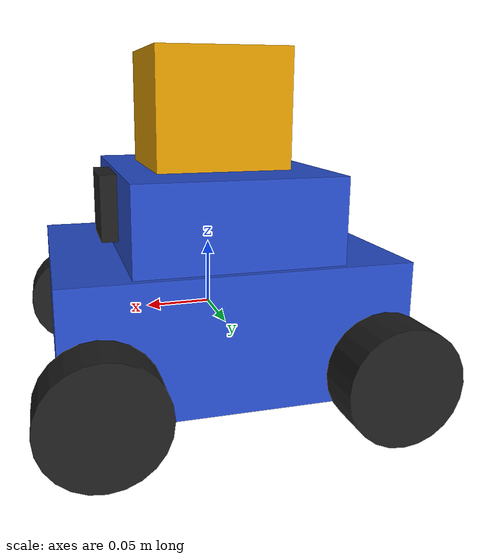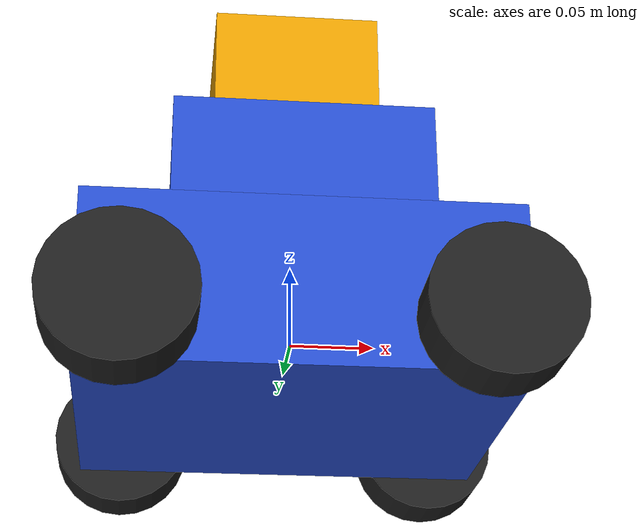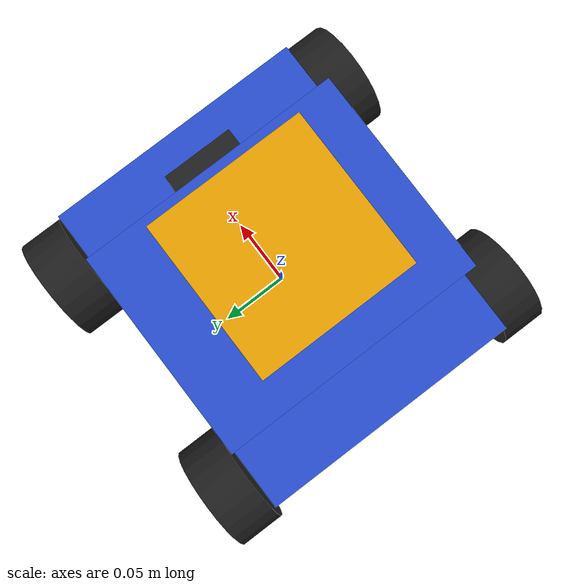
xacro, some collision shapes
<?xml version='1.0'?>

<robot name="my_robot" xmlns:xacro="http://www.ros.org/wiki/xacro">
  <xacro:include filename="$(find my_robot)/urdf/my_robot.gazebo" />
  <link name="robot_footprint"></link>

  <joint name="robot_footprint_joint" type="fixed">
    <origin xyz="0 0 0" rpy="0 0 0" />
    <parent link="robot_footprint"/>
    <child link="chassis" />
  </joint>

  <link name='chassis'>
    <pose>0 0 0.1 0 0 0</pose>

    <inertial>
      <mass value="15.0"/>
      <origin xyz="0.0 0 0" rpy=" 0 0 0"/>
      <inertia
          ixx="0.1" ixy="0" ixz="0"
          iyy="0.1" iyz="0"
          izz="0.1"
      />
    </inertial>

    <collision name='collision'>
      <origin xyz="0 0 0" rpy=" 0 0 0"/>
      <geometry>
        <box size=".25 .2 .1"/>
      </geometry>
    </collision>

    <visual name='chassis_visual'>
      <origin xyz="0 0 0" rpy=" 0 0 0"/>
      <geometry>
        <box size=".25 .2 .1"/>
      </geometry>
    </visual>

    <collision name='top_collision'>
      <origin xyz="0 0 .075" rpy=" 0 0 0"/>
      <geometry>
        <box size=".15 .19 .075"/>
      </geometry>
    </collision>

    <visual name='top_visual'>
      <origin xyz="0 0 0.075" rpy=" 0 0 0"/>
      <geometry>
        <box size=".15 .19 .075"/>
      </geometry>
    </visual>

  </link>

  <link name='right_f_wheel'>
    <pose>0 0 0.1 0 0 0</pose>

    <inertial>
      <mass value="5.0"/>
      <origin xyz="0.0 0 0" rpy=" 0 1.5707 1.5707"/>
      <inertia
          ixx="0.1" ixy="0" ixz="0"
          iyy="0.1" iyz="0"
          izz="0.1"
      />
    </inertial>

    <collision name='right_f_wheel_collision'>
      <origin xyz="0.0 0 0" rpy=" 0 1.5707 1.5707"/>
      <geometry>
        <cylinder radius="0.0425" length="0.035"/>
      </geometry>
    </collision>

    <visual name='right_f_wheel_visual'>
      <origin xyz="0.0 0 0" rpy=" 0 1.5707 1.5707"/>
      <geometry>
        <cylinder radius="0.0425" length="0.035"/>
      </geometry>
    </visual>

  </link>

  <link name='left_f_wheel'>
    <pose>0 0 0.1 0 0 0</pose>

    <inertial>
      <mass value="5.0"/>
      <origin xyz="0.0 0 0" rpy=" 0 1.5707 1.5707"/>
      <inertia
          ixx="0.1" ixy="0" ixz="0"
          iyy="0.1" iyz="0"
          izz="0.1"
      />
    </inertial>

    <collision name='left_f_wheel_collision'>
      <origin xyz="0.0 0 0" rpy=" 0 1.5707 1.5707"/>
      <geometry>
        <cylinder radius="0.0425" length="0.035"/>
      </geometry>
    </collision>

    <visual name='left_f_wheel_visual'>
      <origin xyz="0.0 0 0" rpy=" 0 1.5707 1.5707"/>
      <geometry>
        <cylinder radius="0.0425" length="0.035"/>
      </geometry>
    </visual>

  </link>

  <link name='right_r_wheel'>
    <pose>0 0 0.1 0 0 0</pose>

    <inertial>
      <mass value="5.0"/>
      <origin xyz="0.0 0 0" rpy=" 0 1.5707 1.5707"/>
      <inertia
          ixx="0.1" ixy="0" ixz="0"
          iyy="0.1" iyz="0"
          izz="0.1"
      />
    </inertial>

    <collision name='right_r_wheel_collision'>
      <origin xyz="0.0 0 0" rpy=" 0 1.5707 1.5707"/>
      <geometry>
        <cylinder radius="0.0425" length="0.035"/>
      </geometry>
    </collision>

    <visual name='right_r_wheel_visual'>
      <origin xyz="0.0 0 0" rpy=" 0 1.5707 1.5707"/>
      <geometry>
        <cylinder radius="0.0425" length="0.035"/>
      </geometry>
    </visual>

  </link>

  <link name='left_r_wheel'>
    <pose>0 0 0.1 0 0 0</pose>

    <inertial>
      <mass value="5.0"/>
      <origin xyz="0.0 0 0" rpy=" 0 1.5707 1.5707"/>
      <inertia
          ixx="0.1" ixy="0" ixz="0"
          iyy="0.1" iyz="0"
          izz="0.1"
      />
    </inertial>

    <collision name='left_r_wheel_collision'>
      <origin xyz="0.0 0 0" rpy=" 0 1.5707 1.5707"/>
      <geometry>
        <cylinder radius="0.0425" length="0.035"/>
      </geometry>
    </collision>

    <visual name='left_r_wheel_visual'>
      <origin xyz="0.0 0 0" rpy=" 0 1.5707 1.5707"/>
      <geometry>
        <cylinder radius="0.0425" length="0.035"/>
      </geometry>
    </visual>

  </link>

  <joint type="continuous" name="right_f_wheel_hinge">
    <origin xyz="0.1 -0.125 -0.025" rpy="0 0 0"/>
    <child link="right_f_wheel"/>
    <parent link="chassis"/>
    <axis xyz="0 1 0" rpy="0 0 0"/>
    <limit effort="10000" velocity="1000"/>
    <dynamics damping="1.0" friction="1.0"/>
  </joint>

  <joint type="continuous" name="left_f_wheel_hinge">
    <origin xyz="0.1 0.125 -0.025" rpy="0 0 0"/>
    <child link="left_f_wheel"/>
    <parent link="chassis"/>
    <axis xyz="0 1 0" rpy="0 0 0"/>
    <limit effort="10000" velocity="1000"/>
    <dynamics damping="1.0" friction="1.0"/>
  </joint>

  <joint type="continuous" name="right_r_wheel_hinge">
    <origin xyz="-0.1 -0.125 -0.025" rpy="0 0 0"/>
    <child link="right_r_wheel"/>
    <parent link="chassis"/>
    <axis xyz="0 1 0" rpy="0 0 0"/>
    <limit effort="10000" velocity="1000"/>
    <dynamics damping="1.0" friction="1.0"/>
  </joint>

  <joint type="continuous" name="left_r_wheel_hinge">
    <origin xyz="-0.1 0.125 -0.025" rpy="0 0 0"/>
    <child link="left_r_wheel"/>
    <parent link="chassis"/>
    <axis xyz="0 1 0" rpy="0 0 0"/>
    <limit effort="10000" velocity="1000"/>
    <dynamics damping="1.0" friction="1.0"/>
  </joint>

  <link name='camera'>
    <pose>0 0 0 0 0 0</pose>

    <inertial>
      <mass value="0.1"/>
      <origin xyz="0.0 0 0" rpy=" 0 0 0"/>
      <box_inertia m="0.1" x="0.05" y="0.05" z="0.025}"/>
      <inertia
          ixx="1e-6" ixy="0" ixz="0"
          iyy="1e-6" iyz="0"
          izz="1e-6"
      />
    </inertial>

    <collision name='camera_collision'>
      <origin xyz="0.0 0 0" rpy=" 0 0 0"/>
      <geometry>
        <box size=".025 .05 .05"/>
      </geometry>
    </collision>

    <visual name='camera_visual'>
      <origin xyz="0.0 0 0" rpy=" 0 0 0"/>
      <geometry>
        <box size=".025 .05 .05"/>
      </geometry>
    </visual>

  </link>

  <joint type="fixed" name="camera_joint">
    <origin xyz="0.075 0 0.085 " rpy="0 0 0"/>
    <child link="camera"/>
    <parent link="chassis"/>
    <axis xyz="0 1 0" rpy="0 0 0"/>
  </joint>

  <link name='camera_link_optical'>
  </link>

  <joint name="camera_optical_joint" type="fixed">
    <origin xyz="0 0 0" rpy="0 0 0"/>
    <parent link="camera"/>
    <child link="camera_link_optical"/>
  </joint>

  <link name='hokuyo'>
    <pose>0 0 0 0 0 0</pose>

    <inertial>
      <mass value="1e-5"/>
      <origin xyz="0.0 0 0" rpy=" 0 0 0"/>
      <box_inertia m="0.1" x="0.05" y="0.05" z="0.05}"/>
      <inertia
          ixx="1e-6" ixy="0" ixz="0"
          iyy="1e-6" iyz="0"
          izz="1e-6"
      />
    </inertial>

    <collision name='hokuyo_collision'>
      <origin xyz="0.0 0 0" rpy=" 0 0 0"/>
      <geometry>
        <box size=".1 .1 .1"/>
      </geometry>
    </collision>

    <visual name='hokuyo_visual'>
      <origin xyz="0.0 0 0" rpy=" 0 0 0"/>
      <geometry>
        <mesh filename='package://my_robot/meshes/hokuyo.dae'/>
      </geometry>
    </visual>

  </link>

  <joint type="fixed" name="hokuyo_joint">
    <origin xyz="0 0 0.15" rpy="0 0 0"/>
    <child link="hokuyo"/>
    <parent link="chassis"/>
    <axis xyz="0 1 0" rpy="0 0 0"/>
  </joint>

  <gazebo reference="chassis">
    <material>Gazebo/Blue</material>
  </gazebo>
  <gazebo reference="camera">
    <material>Gazebo/Black</material>
  </gazebo>
  <gazebo reference="right_f_wheel">
    <material>Gazebo/FlatBlack</material>
  </gazebo>
  <gazebo reference="left_f_wheel">
    <material>Gazebo/FlatBlack</material>
  </gazebo>
  <gazebo reference="right_r_wheel">
    <material>Gazebo/FlatBlack</material>
  </gazebo>
  <gazebo reference="left_r_wheel">
    <material>Gazebo/FlatBlack</material>
  </gazebo>

</robot>
